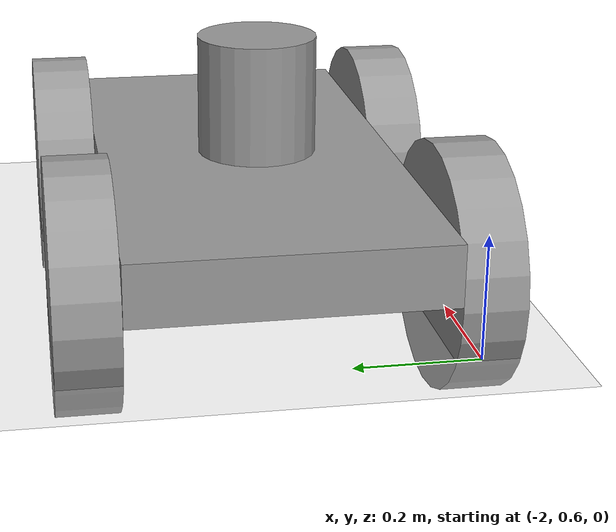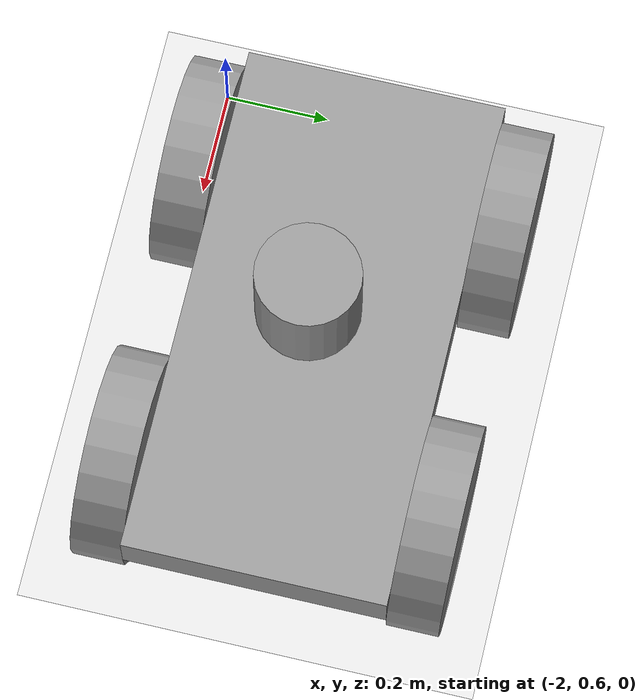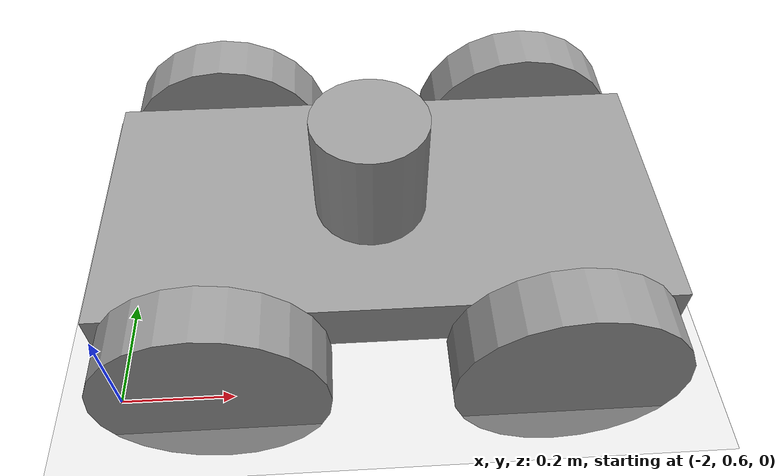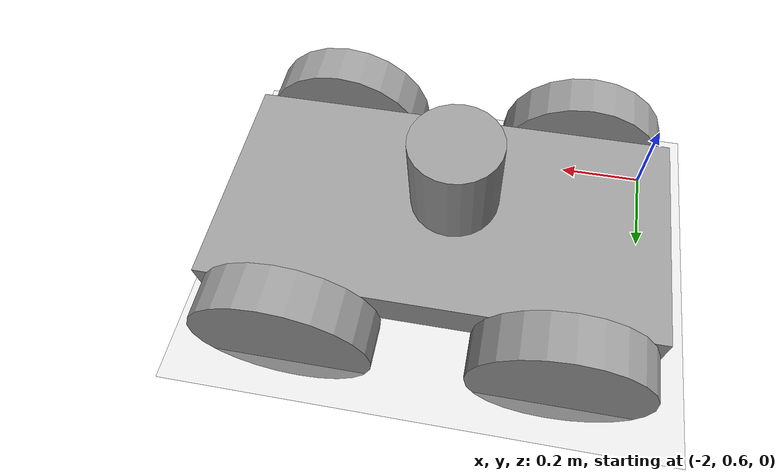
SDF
<sdf version="1.7">
 <world name="__default__">
  <model name="simplecar_clone_0">
   <link name="link_0">
    <inertial>
     <mass>1</mass>
     <inertia>
      <ixx>0.166667</ixx>
      <ixy>0</ixy>
      <ixz>0</ixz>
      <iyy>0.166667</iyy>
      <iyz>0</iyz>
      <izz>0.166667</izz>
     </inertia>
    </inertial>
    <pose>0.003333 0.003333 0.147691 0 -0 0</pose>
    <visual name="visual">
     <geometry><box><size>1 0.5 0.1</size></box></geometry>
     <material>
      <lighting>1</lighting>
      <script><uri>file://media/materials/scripts/gazebo.material</uri><name>Gazebo/Grey</name></script>
      <shader type="pixel"><normal_map>__default__</normal_map></shader>
      <ambient>0.3 0.3 0.3 1</ambient>
      <diffuse>0.7 0.7 0.7 1</diffuse>
      <specular>0.01 0.01 0.01 1</specular>
      <emissive>0 0 0 1</emissive>
     </material>
    </visual>
    <collision name="collision">
     <geometry><box><size>1 0.5 0.1</size></box></geometry>
     <surface>
      <friction>
       <ode><mu>1</mu><mu2>1</mu2><fdir1>0 0 0</fdir1><slip1>0</slip1><slip2>0</slip2></ode>
       <torsional>
        <coefficient>1</coefficient>
        <patch_radius>0</patch_radius>
        <surface_radius>0</surface_radius>
        <use_patch_radius>1</use_patch_radius>
        <ode><slip>0</slip></ode>
       </torsional>
      </friction>
      <bounce><restitution_coefficient>0</restitution_coefficient><threshold>1e+06</threshold></bounce>
      <contact>
       <collide_without_contact>0</collide_without_contact>
       <collide_without_contact_bitmask>1</collide_without_contact_bitmask>
       <collide_bitmask>1</collide_bitmask>
       <ode>
        <soft_cfm>0</soft_cfm>
        <soft_erp>0.2</soft_erp>
        <kp>1e+13</kp>
        <kd>1</kd>
        <max_vel>0.01</max_vel>
        <min_depth>0</min_depth>
       </ode>
       <bullet>
        <split_impulse>1</split_impulse>
        <split_impulse_penetration_threshold>-0.01</split_impulse_penetration_threshold>
        <soft_cfm>0</soft_cfm>
        <soft_erp>0.2</soft_erp>
        <kp>1e+13</kp>
        <kd>1</kd>
       </bullet>
      </contact>
     </surface>
    </collision>
   </link>
   <link name="link_1">
    <inertial>
     <mass>1</mass>
     <inertia><ixx>0.145833</ixx><ixy>0</ixy><ixz>0</ixz><iyy>0.145833</iyy><iyz>0</iyz><izz>0.125</izz></inertia>
    </inertial>
    <pose>-0.296667 0.303353 -0.112314 0 -0 0</pose>
    <visual name="visual">
     <pose>0 0 0.2 1.5707 -0 0</pose>
     <geometry><cylinder><radius>0.2</radius><length>0.1</length></cylinder></geometry>
     <material>
      <lighting>1</lighting>
      <script><uri>file://media/materials/scripts/gazebo.material</uri><name>Gazebo/Grey</name></script>
      <shader type="pixel"><normal_map>__default__</normal_map></shader>
      <ambient>0.3 0.3 0.3 1</ambient>
      <diffuse>0.7 0.7 0.7 1</diffuse>
      <specular>0.01 0.01 0.01 1</specular>
      <emissive>0 0 0 1</emissive>
     </material>
    </visual>
    <collision name="collision">
     <pose>0 0 0.2 1.5707 -0 0</pose>
     <geometry><cylinder><radius>0.2</radius><length>0.1</length></cylinder></geometry>
     <surface>
      <friction>
       <ode><mu>1</mu><mu2>1</mu2><fdir1>0 0 0</fdir1><slip1>0</slip1><slip2>0</slip2></ode>
       <torsional>
        <coefficient>1</coefficient>
        <patch_radius>0</patch_radius>
        <surface_radius>0</surface_radius>
        <use_patch_radius>1</use_patch_radius>
        <ode><slip>0</slip></ode>
       </torsional>
      </friction>
      <bounce><restitution_coefficient>0</restitution_coefficient><threshold>1e+06</threshold></bounce>
      <contact>
       <collide_without_contact>0</collide_without_contact>
       <collide_without_contact_bitmask>1</collide_without_contact_bitmask>
       <collide_bitmask>1</collide_bitmask>
       <ode>
        <soft_cfm>0</soft_cfm>
        <soft_erp>0.2</soft_erp>
        <kp>1e+13</kp>
        <kd>1</kd>
        <max_vel>0.01</max_vel>
        <min_depth>0</min_depth>
       </ode>
       <bullet>
        <split_impulse>1</split_impulse>
        <split_impulse_penetration_threshold>-0.01</split_impulse_penetration_threshold>
        <soft_cfm>0</soft_cfm>
        <soft_erp>0.2</soft_erp>
        <kp>1e+13</kp>
        <kd>1</kd>
       </bullet>
      </contact>
     </surface>
    </collision>
   </link>
   <link name="link_1_clone_0">
    <inertial>
     <mass>1</mass>
     <inertia><ixx>0.145833</ixx><ixy>0</ixy><ixz>0</ixz><iyy>0.145833</iyy><iyz>0</iyz><izz>0.125</izz></inertia>
    </inertial>
    <pose>0.303333 0.303353 -0.112314 0 -0 0</pose>
    <visual name="visual">
     <pose>0 0 0.2 1.5707 -0 0</pose>
     <geometry><cylinder><radius>0.2</radius><length>0.1</length></cylinder></geometry>
     <material>
      <lighting>1</lighting>
      <script><uri>file://media/materials/scripts/gazebo.material</uri><name>Gazebo/Grey</name></script>
      <shader type="pixel"><normal_map>__default__</normal_map></shader>
      <ambient>0.3 0.3 0.3 1</ambient>
      <diffuse>0.7 0.7 0.7 1</diffuse>
      <specular>0.01 0.01 0.01 1</specular>
      <emissive>0 0 0 1</emissive>
     </material>
    </visual>
    <collision name="collision">
     <pose>0 0 0.2 1.5707 -0 0</pose>
     <geometry><cylinder><radius>0.2</radius><length>0.1</length></cylinder></geometry>
     <surface>
      <friction>
       <ode><mu>1</mu><mu2>1</mu2><fdir1>0 0 0</fdir1><slip1>0</slip1><slip2>0</slip2></ode>
       <torsional>
        <coefficient>1</coefficient>
        <patch_radius>0</patch_radius>
        <surface_radius>0</surface_radius>
        <use_patch_radius>1</use_patch_radius>
        <ode><slip>0</slip></ode>
       </torsional>
      </friction>
      <bounce><restitution_coefficient>0</restitution_coefficient><threshold>1e+06</threshold></bounce>
      <contact>
       <collide_without_contact>0</collide_without_contact>
       <collide_without_contact_bitmask>1</collide_without_contact_bitmask>
       <collide_bitmask>1</collide_bitmask>
       <ode>
        <soft_cfm>0</soft_cfm>
        <soft_erp>0.2</soft_erp>
        <kp>1e+13</kp>
        <kd>1</kd>
        <max_vel>0.01</max_vel>
        <min_depth>0</min_depth>
       </ode>
       <bullet>
        <split_impulse>1</split_impulse>
        <split_impulse_penetration_threshold>-0.01</split_impulse_penetration_threshold>
        <soft_cfm>0</soft_cfm>
        <soft_erp>0.2</soft_erp>
        <kp>1e+13</kp>
        <kd>1</kd>
       </bullet>
      </contact>
     </surface>
    </collision>
   </link>
   <link name="link_1_clone_1">
    <inertial>
     <mass>1</mass>
     <inertia><ixx>0.145833</ixx><ixy>0</ixy><ixz>0</ixz><iyy>0.145833</iyy><iyz>0</iyz><izz>0.125</izz></inertia>
    </inertial>
    <pose>0.303333 -0.296686 -0.112314 0 -0 0</pose>
    <visual name="visual">
     <pose>0 0 0.2 1.5707 -0 0</pose>
     <geometry><cylinder><radius>0.2</radius><length>0.1</length></cylinder></geometry>
     <material>
      <lighting>1</lighting>
      <script><uri>file://media/materials/scripts/gazebo.material</uri><name>Gazebo/Grey</name></script>
      <shader type="pixel"><normal_map>__default__</normal_map></shader>
      <ambient>0.3 0.3 0.3 1</ambient>
      <diffuse>0.7 0.7 0.7 1</diffuse>
      <specular>0.01 0.01 0.01 1</specular>
      <emissive>0 0 0 1</emissive>
     </material>
    </visual>
    <collision name="collision">
     <pose>0 0 0.2 1.5707 -0 0</pose>
     <geometry><cylinder><radius>0.2</radius><length>0.1</length></cylinder></geometry>
     <surface>
      <friction>
       <ode><mu>1</mu><mu2>1</mu2><fdir1>0 0 0</fdir1><slip1>0</slip1><slip2>0</slip2></ode>
       <torsional>
        <coefficient>1</coefficient>
        <patch_radius>0</patch_radius>
        <surface_radius>0</surface_radius>
        <use_patch_radius>1</use_patch_radius>
        <ode><slip>0</slip></ode>
       </torsional>
      </friction>
      <bounce><restitution_coefficient>0</restitution_coefficient><threshold>1e+06</threshold></bounce>
      <contact>
       <collide_without_contact>0</collide_without_contact>
       <collide_without_contact_bitmask>1</collide_without_contact_bitmask>
       <collide_bitmask>1</collide_bitmask>
       <ode>
        <soft_cfm>0</soft_cfm>
        <soft_erp>0.2</soft_erp>
        <kp>1e+13</kp>
        <kd>1</kd>
        <max_vel>0.01</max_vel>
        <min_depth>0</min_depth>
       </ode>
       <bullet>
        <split_impulse>1</split_impulse>
        <split_impulse_penetration_threshold>-0.01</split_impulse_penetration_threshold>
        <soft_cfm>0</soft_cfm>
        <soft_erp>0.2</soft_erp>
        <kp>1e+13</kp>
        <kd>1</kd>
       </bullet>
      </contact>
     </surface>
    </collision>
   </link>
   <link name="link_1_clone_1_clone">
    <inertial>
     <mass>1</mass>
     <inertia><ixx>0.145833</ixx><ixy>0</ixy><ixz>0</ixz><iyy>0.145833</iyy><iyz>0</iyz><izz>0.125</izz></inertia>
    </inertial>
    <pose>-0.296667 -0.296686 -0.112314 0 -0 0</pose>
    <visual name="visual">
     <pose>0 0 0.2 1.5707 -0 0</pose>
     <geometry><cylinder><radius>0.2</radius><length>0.1</length></cylinder></geometry>
     <material>
      <lighting>1</lighting>
      <script><uri>file://media/materials/scripts/gazebo.material</uri><name>Gazebo/Grey</name></script>
      <shader type="pixel"><normal_map>__default__</normal_map></shader>
      <ambient>0.3 0.3 0.3 1</ambient>
      <diffuse>0.7 0.7 0.7 1</diffuse>
      <specular>0.01 0.01 0.01 1</specular>
      <emissive>0 0 0 1</emissive>
     </material>
    </visual>
    <collision name="collision">
     <pose>0 0 0.2 1.5707 -0 0</pose>
     <geometry><cylinder><radius>0.2</radius><length>0.1</length></cylinder></geometry>
     <surface>
      <friction>
       <ode><mu>1</mu><mu2>1</mu2><fdir1>0 0 0</fdir1><slip1>0</slip1><slip2>0</slip2></ode>
       <torsional>
        <coefficient>1</coefficient>
        <patch_radius>0</patch_radius>
        <surface_radius>0</surface_radius>
        <use_patch_radius>1</use_patch_radius>
        <ode><slip>0</slip></ode>
       </torsional>
      </friction>
      <bounce><restitution_coefficient>0</restitution_coefficient><threshold>1e+06</threshold></bounce>
      <contact>
       <collide_without_contact>0</collide_without_contact>
       <collide_without_contact_bitmask>1</collide_without_contact_bitmask>
       <collide_bitmask>1</collide_bitmask>
       <ode>
        <soft_cfm>0</soft_cfm>
        <soft_erp>0.2</soft_erp>
        <kp>1e+13</kp>
        <kd>1</kd>
        <max_vel>0.01</max_vel>
        <min_depth>0</min_depth>
       </ode>
       <bullet>
        <split_impulse>1</split_impulse>
        <split_impulse_penetration_threshold>-0.01</split_impulse_penetration_threshold>
        <soft_cfm>0</soft_cfm>
        <soft_erp>0.2</soft_erp>
        <kp>1e+13</kp>
        <kd>1</kd>
       </bullet>
      </contact>
     </surface>
    </collision>
   </link>
   <link name="link_3">
    <inertial>
     <mass>1</mass>
     <inertia><ixx>0.145833</ixx><ixy>0</ixy><ixz>0</ixz><iyy>0.145833</iyy><iyz>0</iyz><izz>0.125</izz></inertia>
    </inertial>
    <pose>-0.016667 -0.016667 0.301567 0 -0 0</pose>
    <visual name="visual">
     <geometry><cylinder><radius>0.1</radius><length>0.2</length></cylinder></geometry>
     <material>
      <lighting>1</lighting>
      <script><uri>file://media/materials/scripts/gazebo.material</uri><name>Gazebo/Grey</name></script>
      <shader type="pixel"><normal_map>__default__</normal_map></shader>
      <ambient>0.3 0.3 0.3 1</ambient>
      <diffuse>0.7 0.7 0.7 1</diffuse>
      <specular>0.01 0.01 0.01 1</specular>
      <emissive>0 0 0 1</emissive>
     </material>
    </visual>
    <collision name="collision">
     <geometry><cylinder><radius>0.1</radius><length>0.2</length></cylinder></geometry>
     <surface>
      <friction>
       <ode><mu>1</mu><mu2>1</mu2><fdir1>0 0 0</fdir1><slip1>0</slip1><slip2>0</slip2></ode>
       <torsional>
        <coefficient>1</coefficient>
        <patch_radius>0</patch_radius>
        <surface_radius>0</surface_radius>
        <use_patch_radius>1</use_patch_radius>
        <ode><slip>0</slip></ode>
       </torsional>
      </friction>
      <bounce><restitution_coefficient>0</restitution_coefficient><threshold>1e+06</threshold></bounce>
      <contact>
       <collide_without_contact>0</collide_without_contact>
       <collide_without_contact_bitmask>1</collide_without_contact_bitmask>
       <collide_bitmask>1</collide_bitmask>
       <ode>
        <soft_cfm>0</soft_cfm>
        <soft_erp>0.2</soft_erp>
        <kp>1e+13</kp>
        <kd>1</kd>
        <max_vel>0.01</max_vel>
        <min_depth>0</min_depth>
       </ode>
       <bullet>
        <split_impulse>1</split_impulse>
        <split_impulse_penetration_threshold>-0.01</split_impulse_penetration_threshold>
        <soft_cfm>0</soft_cfm>
        <soft_erp>0.2</soft_erp>
        <kp>1e+13</kp>
        <kd>1</kd>
       </bullet>
      </contact>
     </surface>
    </collision>
   </link>
   <joint name="link_0_JOINT_1" type="revolute">
    <parent>link_0</parent>
    <child>link_1</child>
    <axis>
     <xyz>1 0 0</xyz>
     <limit>
      <lower>-1.79769e+308</lower>
      <upper>1.79769e+308</upper>
      <effort>-1</effort>
      <velocity>-1</velocity>
     </limit>
     <dynamics>
      <spring_reference>0</spring_reference>
      <spring_stiffness>0</spring_stiffness>
      <damping>0</damping>
      <friction>0</friction>
     </dynamics>
    </axis>
    <physics>
     <ode><limit><cfm>0</cfm><erp>0.2</erp></limit><suspension><cfm>0</cfm><erp>0.2</erp></suspension></ode>
    </physics>
   </joint>
   <joint name="link_0_JOINT_2" type="revolute">
    <parent>link_0</parent>
    <child>link_1_clone_1_clone</child>
    <axis>
     <xyz>0 0 1</xyz>
     <limit>
      <lower>-1.79769e+308</lower>
      <upper>1.79769e+308</upper>
      <effort>-1</effort>
      <velocity>-1</velocity>
     </limit>
     <dynamics>
      <spring_reference>0</spring_reference>
      <spring_stiffness>0</spring_stiffness>
      <damping>0</damping>
      <friction>0</friction>
     </dynamics>
    </axis>
    <physics>
     <ode><limit><cfm>0</cfm><erp>0.2</erp></limit><suspension><cfm>0</cfm><erp>0.2</erp></suspension></ode>
    </physics>
   </joint>
   <joint name="link_0_JOINT_3" type="revolute">
    <parent>link_0</parent>
    <child>link_1_clone_1</child>
    <axis>
     <xyz>0 0 1</xyz>
     <limit>
      <lower>-1.79769e+308</lower>
      <upper>1.79769e+308</upper>
      <effort>-1</effort>
      <velocity>-1</velocity>
     </limit>
     <dynamics>
      <spring_reference>0</spring_reference>
      <spring_stiffness>0</spring_stiffness>
      <damping>0</damping>
      <friction>0</friction>
     </dynamics>
    </axis>
    <physics>
     <ode><limit><cfm>0</cfm><erp>0.2</erp></limit><suspension><cfm>0</cfm><erp>0.2</erp></suspension></ode>
    </physics>
   </joint>
   <joint name="link_0_JOINT_4" type="revolute">
    <parent>link_0</parent>
    <child>link_1_clone_0</child>
    <axis>
     <xyz>0 0 1</xyz>
     <limit>
      <lower>-1.79769e+308</lower>
      <upper>1.79769e+308</upper>
      <effort>-1</effort>
      <velocity>-1</velocity>
     </limit>
     <dynamics>
      <spring_reference>0</spring_reference>
      <spring_stiffness>0</spring_stiffness>
      <damping>0</damping>
      <friction>0</friction>
     </dynamics>
    </axis>
    <physics>
     <ode><limit><cfm>0</cfm><erp>0.2</erp></limit><suspension><cfm>0</cfm><erp>0.2</erp></suspension></ode>
    </physics>
   </joint>
   <joint name="link_0_JOINT_5" type="fixed">
    <parent>link_0</parent>
    <child>link_3</child>
    <physics>
     <ode><limit><cfm>0</cfm><erp>0.2</erp></limit><suspension><cfm>0</cfm><erp>0.2</erp></suspension></ode>
    </physics>
   </joint>
   <static>1</static>
   <pose>-1.52744 0.886682 0 0 -0 0</pose>
  </model>
  <model name="ground_plane">
   <static>1</static>
   <link name="link">
    <collision name="collision">
     <geometry><plane><normal>0 0 1</normal><size>100 100</size></plane></geometry>
     <surface>
      <contact><collide_bitmask>65535</collide_bitmask></contact>
      <friction><ode><mu>100</mu><mu2>50</mu2></ode></friction>
     </surface>
    </collision>
    <visual name="visual">
     <cast_shadows>0</cast_shadows>
     <geometry><plane><normal>0 0 1</normal><size>100 100</size></plane></geometry>
     <material>
      <script><uri>file://media/materials/scripts/gazebo.material</uri><name>Gazebo/Grey</name></script>
     </material>
    </visual>
   </link>
   <pose>-59.0264 48.4098 0 0 -0 0</pose>
  </model>
 </world>
</sdf>
